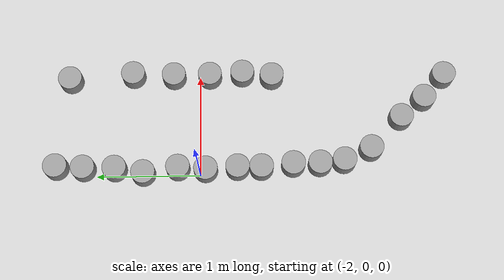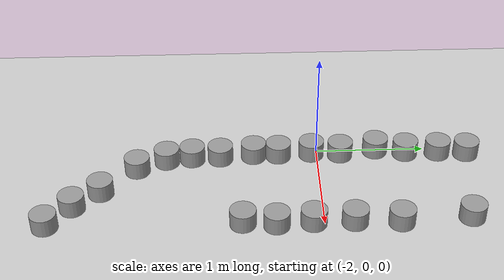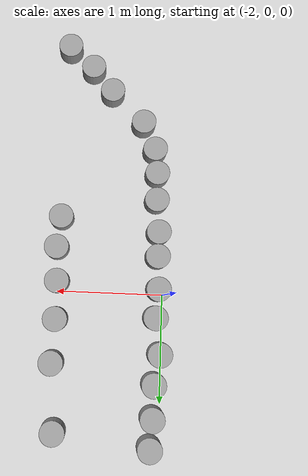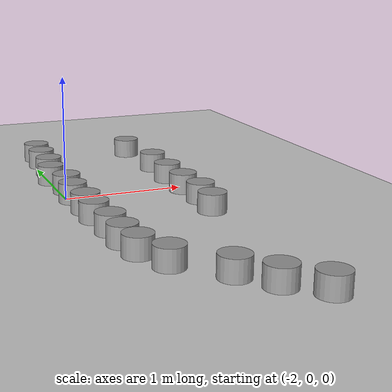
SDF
<sdf version="1.6">
 <world name="default">
  <model name="ground_plane">
   <static>1</static>
   <link name="link">
    <collision name="collision">
     <geometry><plane><normal>0 0 1</normal><size>100 100</size></plane></geometry>
     <surface>
      <contact><collide_bitmask>65535</collide_bitmask></contact>
      <friction><ode><mu>100</mu><mu2>50</mu2></ode></friction>
     </surface>
    </collision>
    <visual name="visual">
     <cast_shadows>0</cast_shadows>
     <geometry><plane><normal>0 0 1</normal><size>100 100</size></plane></geometry>
     <material>
      <script><uri>file://media/materials/scripts/gazebo.material</uri><name>Gazebo/Grey</name></script>
     </material>
    </visual>
   </link>
  </model>
  <model name="pillar_clone_4">
   <link name="link_0">
    <inertial>
     <mass>0.0172437</mass>
     <inertia>
      <ixx>0.000207925</ixx>
      <ixy>0</ixy>
      <ixz>0</ixz>
      <iyy>0.000207925</iyy>
      <iyz>0</iyz>
      <izz>0.000114861</izz>
     </inertia>
    </inertial>
    <pose>2e-06 -0 0 0 -0 0</pose>
    <visual name="visual">
     <geometry><cylinder><radius>0.115422</radius><length>0.32362</length></cylinder></geometry>
     <material>
      <lighting>1</lighting>
      <script><uri>file://media/materials/scripts/gazebo.material</uri><name>Gazebo/Grey</name></script>
      <shader type="vertex"><normal_map>__default__</normal_map></shader>
     </material>
    </visual>
    <collision name="collision">
     <geometry><cylinder><radius>0.115422</radius><length>0.32362</length></cylinder></geometry>
     <surface>
      <friction>
       <ode><mu>1</mu><mu2>1</mu2><fdir1>0 0 0</fdir1><slip1>0</slip1><slip2>0</slip2></ode>
       <torsional>
        <coefficient>1</coefficient>
        <patch_radius>0</patch_radius>
        <surface_radius>0</surface_radius>
        <use_patch_radius>1</use_patch_radius>
        <ode><slip>0</slip></ode>
       </torsional>
      </friction>
      <bounce><restitution_coefficient>0</restitution_coefficient><threshold>1e+06</threshold></bounce>
      <contact>
       <collide_without_contact>0</collide_without_contact>
       <collide_without_contact_bitmask>1</collide_without_contact_bitmask>
       <collide_bitmask>1</collide_bitmask>
       <ode>
        <soft_cfm>0</soft_cfm>
        <soft_erp>0.2</soft_erp>
        <kp>1e+13</kp>
        <kd>1</kd>
        <max_vel>0.01</max_vel>
        <min_depth>0</min_depth>
       </ode>
       <bullet>
        <split_impulse>1</split_impulse>
        <split_impulse_penetration_threshold>-0.01</split_impulse_penetration_threshold>
        <soft_cfm>0</soft_cfm>
        <soft_erp>0.2</soft_erp>
        <kp>1e+13</kp>
        <kd>1</kd>
       </bullet>
      </contact>
     </surface>
    </collision>
   </link>
   <static>1</static>
   <pose>-1.91045 1.38722 0 0 -0 0</pose>
  </model>
  <model name="pillar_clone_5">
   <link name="link_0">
    <inertial>
     <mass>0.0172437</mass>
     <inertia>
      <ixx>0.000207925</ixx>
      <ixy>0</ixy>
      <ixz>0</ixz>
      <iyy>0.000207925</iyy>
      <iyz>0</iyz>
      <izz>0.000114861</izz>
     </inertia>
    </inertial>
    <pose>2e-06 -0 0 0 -0 0</pose>
    <visual name="visual">
     <geometry><cylinder><radius>0.115422</radius><length>0.32362</length></cylinder></geometry>
     <material>
      <lighting>1</lighting>
      <script><uri>file://media/materials/scripts/gazebo.material</uri><name>Gazebo/Grey</name></script>
      <shader type="vertex"><normal_map>__default__</normal_map></shader>
     </material>
    </visual>
    <collision name="collision">
     <geometry><cylinder><radius>0.115422</radius><length>0.32362</length></cylinder></geometry>
     <surface>
      <friction>
       <ode><mu>1</mu><mu2>1</mu2><fdir1>0 0 0</fdir1><slip1>0</slip1><slip2>0</slip2></ode>
       <torsional>
        <coefficient>1</coefficient>
        <patch_radius>0</patch_radius>
        <surface_radius>0</surface_radius>
        <use_patch_radius>1</use_patch_radius>
        <ode><slip>0</slip></ode>
       </torsional>
      </friction>
      <bounce><restitution_coefficient>0</restitution_coefficient><threshold>1e+06</threshold></bounce>
      <contact>
       <collide_without_contact>0</collide_without_contact>
       <collide_without_contact_bitmask>1</collide_without_contact_bitmask>
       <collide_bitmask>1</collide_bitmask>
       <ode>
        <soft_cfm>0</soft_cfm>
        <soft_erp>0.2</soft_erp>
        <kp>1e+13</kp>
        <kd>1</kd>
        <max_vel>0.01</max_vel>
        <min_depth>0</min_depth>
       </ode>
       <bullet>
        <split_impulse>1</split_impulse>
        <split_impulse_penetration_threshold>-0.01</split_impulse_penetration_threshold>
        <soft_cfm>0</soft_cfm>
        <soft_erp>0.2</soft_erp>
        <kp>1e+13</kp>
        <kd>1</kd>
       </bullet>
      </contact>
     </surface>
    </collision>
   </link>
   <static>1</static>
   <pose>-1.92724 1.12302 0 0 -0 0</pose>
  </model>
  <model name="pillar_clone_6">
   <link name="link_0">
    <inertial>
     <mass>0.0172437</mass>
     <inertia>
      <ixx>0.000207925</ixx>
      <ixy>0</ixy>
      <ixz>0</ixz>
      <iyy>0.000207925</iyy>
      <iyz>0</iyz>
      <izz>0.000114861</izz>
     </inertia>
    </inertial>
    <pose>2e-06 -0 0 0 -0 0</pose>
    <visual name="visual">
     <geometry><cylinder><radius>0.115422</radius><length>0.32362</length></cylinder></geometry>
     <material>
      <lighting>1</lighting>
      <script><uri>file://media/materials/scripts/gazebo.material</uri><name>Gazebo/Grey</name></script>
      <shader type="vertex"><normal_map>__default__</normal_map></shader>
     </material>
    </visual>
    <collision name="collision">
     <geometry><cylinder><radius>0.115422</radius><length>0.32362</length></cylinder></geometry>
     <surface>
      <friction>
       <ode><mu>1</mu><mu2>1</mu2><fdir1>0 0 0</fdir1><slip1>0</slip1><slip2>0</slip2></ode>
       <torsional>
        <coefficient>1</coefficient>
        <patch_radius>0</patch_radius>
        <surface_radius>0</surface_radius>
        <use_patch_radius>1</use_patch_radius>
        <ode><slip>0</slip></ode>
       </torsional>
      </friction>
      <bounce><restitution_coefficient>0</restitution_coefficient><threshold>1e+06</threshold></bounce>
      <contact>
       <collide_without_contact>0</collide_without_contact>
       <collide_without_contact_bitmask>1</collide_without_contact_bitmask>
       <collide_bitmask>1</collide_bitmask>
       <ode>
        <soft_cfm>0</soft_cfm>
        <soft_erp>0.2</soft_erp>
        <kp>1e+13</kp>
        <kd>1</kd>
        <max_vel>0.01</max_vel>
        <min_depth>0</min_depth>
       </ode>
       <bullet>
        <split_impulse>1</split_impulse>
        <split_impulse_penetration_threshold>-0.01</split_impulse_penetration_threshold>
        <soft_cfm>0</soft_cfm>
        <soft_erp>0.2</soft_erp>
        <kp>1e+13</kp>
        <kd>1</kd>
       </bullet>
      </contact>
     </surface>
    </collision>
   </link>
   <static>1</static>
   <pose>-1.93349 0.821144 0 0 -0 0</pose>
  </model>
  <model name="pillar_clone_7">
   <link name="link_0">
    <inertial>
     <mass>0.0172437</mass>
     <inertia>
      <ixx>0.000207925</ixx>
      <ixy>0</ixy>
      <ixz>0</ixz>
      <iyy>0.000207925</iyy>
      <iyz>0</iyz>
      <izz>0.000114861</izz>
     </inertia>
    </inertial>
    <pose>2e-06 -0 0 0 -0 0</pose>
    <visual name="visual">
     <geometry><cylinder><radius>0.115422</radius><length>0.32362</length></cylinder></geometry>
     <material>
      <lighting>1</lighting>
      <script><uri>file://media/materials/scripts/gazebo.material</uri><name>Gazebo/Grey</name></script>
      <shader type="vertex"><normal_map>__default__</normal_map></shader>
     </material>
    </visual>
    <collision name="collision">
     <geometry><cylinder><radius>0.115422</radius><length>0.32362</length></cylinder></geometry>
     <surface>
      <friction>
       <ode><mu>1</mu><mu2>1</mu2><fdir1>0 0 0</fdir1><slip1>0</slip1><slip2>0</slip2></ode>
       <torsional>
        <coefficient>1</coefficient>
        <patch_radius>0</patch_radius>
        <surface_radius>0</surface_radius>
        <use_patch_radius>1</use_patch_radius>
        <ode><slip>0</slip></ode>
       </torsional>
      </friction>
      <bounce><restitution_coefficient>0</restitution_coefficient><threshold>1e+06</threshold></bounce>
      <contact>
       <collide_without_contact>0</collide_without_contact>
       <collide_without_contact_bitmask>1</collide_without_contact_bitmask>
       <collide_bitmask>1</collide_bitmask>
       <ode>
        <soft_cfm>0</soft_cfm>
        <soft_erp>0.2</soft_erp>
        <kp>1e+13</kp>
        <kd>1</kd>
        <max_vel>0.01</max_vel>
        <min_depth>0</min_depth>
       </ode>
       <bullet>
        <split_impulse>1</split_impulse>
        <split_impulse_penetration_threshold>-0.01</split_impulse_penetration_threshold>
        <soft_cfm>0</soft_cfm>
        <soft_erp>0.2</soft_erp>
        <kp>1e+13</kp>
        <kd>1</kd>
       </bullet>
      </contact>
     </surface>
    </collision>
   </link>
   <static>1</static>
   <pose>-1.98154 0.546224 0 0 -0 0</pose>
  </model>
  <model name="pillar_clone_8">
   <link name="link_0">
    <inertial>
     <mass>0.0172437</mass>
     <inertia>
      <ixx>0.000207925</ixx>
      <ixy>0</ixy>
      <ixz>0</ixz>
      <iyy>0.000207925</iyy>
      <iyz>0</iyz>
      <izz>0.000114861</izz>
     </inertia>
    </inertial>
    <pose>2e-06 -0 0 0 -0 0</pose>
    <visual name="visual">
     <geometry><cylinder><radius>0.115422</radius><length>0.32362</length></cylinder></geometry>
     <material>
      <lighting>1</lighting>
      <script><uri>file://media/materials/scripts/gazebo.material</uri><name>Gazebo/Grey</name></script>
      <shader type="vertex"><normal_map>__default__</normal_map></shader>
     </material>
    </visual>
    <collision name="collision">
     <geometry><cylinder><radius>0.115422</radius><length>0.32362</length></cylinder></geometry>
     <surface>
      <friction>
       <ode><mu>1</mu><mu2>1</mu2><fdir1>0 0 0</fdir1><slip1>0</slip1><slip2>0</slip2></ode>
       <torsional>
        <coefficient>1</coefficient>
        <patch_radius>0</patch_radius>
        <surface_radius>0</surface_radius>
        <use_patch_radius>1</use_patch_radius>
        <ode><slip>0</slip></ode>
       </torsional>
      </friction>
      <bounce><restitution_coefficient>0</restitution_coefficient><threshold>1e+06</threshold></bounce>
      <contact>
       <collide_without_contact>0</collide_without_contact>
       <collide_without_contact_bitmask>1</collide_without_contact_bitmask>
       <collide_bitmask>1</collide_bitmask>
       <ode>
        <soft_cfm>0</soft_cfm>
        <soft_erp>0.2</soft_erp>
        <kp>1e+13</kp>
        <kd>1</kd>
        <max_vel>0.01</max_vel>
        <min_depth>0</min_depth>
       </ode>
       <bullet>
        <split_impulse>1</split_impulse>
        <split_impulse_penetration_threshold>-0.01</split_impulse_penetration_threshold>
        <soft_cfm>0</soft_cfm>
        <soft_erp>0.2</soft_erp>
        <kp>1e+13</kp>
        <kd>1</kd>
       </bullet>
      </contact>
     </surface>
    </collision>
   </link>
   <static>1</static>
   <pose>-1.93324 0.214347 0 0 -0 0</pose>
  </model>
  <model name="pillar_clone_9">
   <link name="link_0">
    <inertial>
     <mass>0.0172437</mass>
     <inertia>
      <ixx>0.000207925</ixx>
      <ixy>0</ixy>
      <ixz>0</ixz>
      <iyy>0.000207925</iyy>
      <iyz>0</iyz>
      <izz>0.000114861</izz>
     </inertia>
    </inertial>
    <pose>2e-06 -0 0 0 -0 0</pose>
    <visual name="visual">
     <geometry><cylinder><radius>0.115422</radius><length>0.32362</length></cylinder></geometry>
     <material>
      <lighting>1</lighting>
      <script><uri>file://media/materials/scripts/gazebo.material</uri><name>Gazebo/Grey</name></script>
      <shader type="vertex"><normal_map>__default__</normal_map></shader>
     </material>
    </visual>
    <collision name="collision">
     <geometry><cylinder><radius>0.115422</radius><length>0.32362</length></cylinder></geometry>
     <surface>
      <friction>
       <ode><mu>1</mu><mu2>1</mu2><fdir1>0 0 0</fdir1><slip1>0</slip1><slip2>0</slip2></ode>
       <torsional>
        <coefficient>1</coefficient>
        <patch_radius>0</patch_radius>
        <surface_radius>0</surface_radius>
        <use_patch_radius>1</use_patch_radius>
        <ode><slip>0</slip></ode>
       </torsional>
      </friction>
      <bounce><restitution_coefficient>0</restitution_coefficient><threshold>1e+06</threshold></bounce>
      <contact>
       <collide_without_contact>0</collide_without_contact>
       <collide_without_contact_bitmask>1</collide_without_contact_bitmask>
       <collide_bitmask>1</collide_bitmask>
       <ode>
        <soft_cfm>0</soft_cfm>
        <soft_erp>0.2</soft_erp>
        <kp>1e+13</kp>
        <kd>1</kd>
        <max_vel>0.01</max_vel>
        <min_depth>0</min_depth>
       </ode>
       <bullet>
        <split_impulse>1</split_impulse>
        <split_impulse_penetration_threshold>-0.01</split_impulse_penetration_threshold>
        <soft_cfm>0</soft_cfm>
        <soft_erp>0.2</soft_erp>
        <kp>1e+13</kp>
        <kd>1</kd>
       </bullet>
      </contact>
     </surface>
    </collision>
   </link>
   <static>1</static>
   <pose>-1.9547 -0.052114 0 0 -0 0</pose>
  </model>
  <model name="pillar_clone_10">
   <link name="link_0">
    <inertial>
     <mass>0.0172437</mass>
     <inertia>
      <ixx>0.000207925</ixx>
      <ixy>0</ixy>
      <ixz>0</ixz>
      <iyy>0.000207925</iyy>
      <iyz>0</iyz>
      <izz>0.000114861</izz>
     </inertia>
    </inertial>
    <pose>2e-06 -0 0 0 -0 0</pose>
    <visual name="visual">
     <geometry><cylinder><radius>0.115422</radius><length>0.32362</length></cylinder></geometry>
     <material>
      <lighting>1</lighting>
      <script><uri>file://media/materials/scripts/gazebo.material</uri><name>Gazebo/Grey</name></script>
      <shader type="vertex"><normal_map>__default__</normal_map></shader>
     </material>
    </visual>
    <collision name="collision">
     <geometry><cylinder><radius>0.115422</radius><length>0.32362</length></cylinder></geometry>
     <surface>
      <friction>
       <ode><mu>1</mu><mu2>1</mu2><fdir1>0 0 0</fdir1><slip1>0</slip1><slip2>0</slip2></ode>
       <torsional>
        <coefficient>1</coefficient>
        <patch_radius>0</patch_radius>
        <surface_radius>0</surface_radius>
        <use_patch_radius>1</use_patch_radius>
        <ode><slip>0</slip></ode>
       </torsional>
      </friction>
      <bounce><restitution_coefficient>0</restitution_coefficient><threshold>1e+06</threshold></bounce>
      <contact>
       <collide_without_contact>0</collide_without_contact>
       <collide_without_contact_bitmask>1</collide_without_contact_bitmask>
       <collide_bitmask>1</collide_bitmask>
       <ode>
        <soft_cfm>0</soft_cfm>
        <soft_erp>0.2</soft_erp>
        <kp>1e+13</kp>
        <kd>1</kd>
        <max_vel>0.01</max_vel>
        <min_depth>0</min_depth>
       </ode>
       <bullet>
        <split_impulse>1</split_impulse>
        <split_impulse_penetration_threshold>-0.01</split_impulse_penetration_threshold>
        <soft_cfm>0</soft_cfm>
        <soft_erp>0.2</soft_erp>
        <kp>1e+13</kp>
        <kd>1</kd>
       </bullet>
      </contact>
     </surface>
    </collision>
   </link>
   <static>1</static>
   <pose>-1.93858 -0.358246 0 0 -0 0</pose>
  </model>
  <model name="pillar_clone_11">
   <link name="link_0">
    <inertial>
     <mass>0.0172437</mass>
     <inertia>
      <ixx>0.000207925</ixx>
      <ixy>0</ixy>
      <ixz>0</ixz>
      <iyy>0.000207925</iyy>
      <iyz>0</iyz>
      <izz>0.000114861</izz>
     </inertia>
    </inertial>
    <pose>2e-06 -0 0 0 -0 0</pose>
    <visual name="visual">
     <geometry><cylinder><radius>0.115422</radius><length>0.32362</length></cylinder></geometry>
     <material>
      <lighting>1</lighting>
      <script><uri>file://media/materials/scripts/gazebo.material</uri><name>Gazebo/Grey</name></script>
      <shader type="vertex"><normal_map>__default__</normal_map></shader>
     </material>
    </visual>
    <collision name="collision">
     <geometry><cylinder><radius>0.115422</radius><length>0.32362</length></cylinder></geometry>
     <surface>
      <friction>
       <ode><mu>1</mu><mu2>1</mu2><fdir1>0 0 0</fdir1><slip1>0</slip1><slip2>0</slip2></ode>
       <torsional>
        <coefficient>1</coefficient>
        <patch_radius>0</patch_radius>
        <surface_radius>0</surface_radius>
        <use_patch_radius>1</use_patch_radius>
        <ode><slip>0</slip></ode>
       </torsional>
      </friction>
      <bounce><restitution_coefficient>0</restitution_coefficient><threshold>1e+06</threshold></bounce>
      <contact>
       <collide_without_contact>0</collide_without_contact>
       <collide_without_contact_bitmask>1</collide_without_contact_bitmask>
       <collide_bitmask>1</collide_bitmask>
       <ode>
        <soft_cfm>0</soft_cfm>
        <soft_erp>0.2</soft_erp>
        <kp>1e+13</kp>
        <kd>1</kd>
        <max_vel>0.01</max_vel>
        <min_depth>0</min_depth>
       </ode>
       <bullet>
        <split_impulse>1</split_impulse>
        <split_impulse_penetration_threshold>-0.01</split_impulse_penetration_threshold>
        <soft_cfm>0</soft_cfm>
        <soft_erp>0.2</soft_erp>
        <kp>1e+13</kp>
        <kd>1</kd>
       </bullet>
      </contact>
     </surface>
    </collision>
   </link>
   <static>1</static>
   <pose>-1.94131 -0.588095 0 0 -0 0</pose>
  </model>
  <model name="pillar_clone_12">
   <link name="link_0">
    <inertial>
     <mass>0.0172437</mass>
     <inertia>
      <ixx>0.000207925</ixx>
      <ixy>0</ixy>
      <ixz>0</ixz>
      <iyy>0.000207925</iyy>
      <iyz>0</iyz>
      <izz>0.000114861</izz>
     </inertia>
    </inertial>
    <pose>2e-06 -0 0 0 -0 0</pose>
    <visual name="visual">
     <geometry><cylinder><radius>0.115422</radius><length>0.32362</length></cylinder></geometry>
     <material>
      <lighting>1</lighting>
      <script><uri>file://media/materials/scripts/gazebo.material</uri><name>Gazebo/Grey</name></script>
      <shader type="vertex"><normal_map>__default__</normal_map></shader>
     </material>
    </visual>
    <collision name="collision">
     <geometry><cylinder><radius>0.115422</radius><length>0.32362</length></cylinder></geometry>
     <surface>
      <friction>
       <ode><mu>1</mu><mu2>1</mu2><fdir1>0 0 0</fdir1><slip1>0</slip1><slip2>0</slip2></ode>
       <torsional>
        <coefficient>1</coefficient>
        <patch_radius>0</patch_radius>
        <surface_radius>0</surface_radius>
        <use_patch_radius>1</use_patch_radius>
        <ode><slip>0</slip></ode>
       </torsional>
      </friction>
      <bounce><restitution_coefficient>0</restitution_coefficient><threshold>1e+06</threshold></bounce>
      <contact>
       <collide_without_contact>0</collide_without_contact>
       <collide_without_contact_bitmask>1</collide_without_contact_bitmask>
       <collide_bitmask>1</collide_bitmask>
       <ode>
        <soft_cfm>0</soft_cfm>
        <soft_erp>0.2</soft_erp>
        <kp>1e+13</kp>
        <kd>1</kd>
        <max_vel>0.01</max_vel>
        <min_depth>0</min_depth>
       </ode>
       <bullet>
        <split_impulse>1</split_impulse>
        <split_impulse_penetration_threshold>-0.01</split_impulse_penetration_threshold>
        <soft_cfm>0</soft_cfm>
        <soft_erp>0.2</soft_erp>
        <kp>1e+13</kp>
        <kd>1</kd>
       </bullet>
      </contact>
     </surface>
    </collision>
   </link>
   <static>1</static>
   <pose>-1.91538 -0.894045 0 0 -0 0</pose>
  </model>
  <model name="pillar_clone_42">
   <link name="link_0">
    <inertial>
     <mass>0.0172437</mass>
     <inertia>
      <ixx>0.000207925</ixx>
      <ixy>0</ixy>
      <ixz>0</ixz>
      <iyy>0.000207925</iyy>
      <iyz>0</iyz>
      <izz>0.000114861</izz>
     </inertia>
    </inertial>
    <pose>2e-06 -0 0 0 -0 0</pose>
    <visual name="visual">
     <geometry><cylinder><radius>0.115422</radius><length>0.32362</length></cylinder></geometry>
     <material>
      <lighting>1</lighting>
      <script><uri>file://media/materials/scripts/gazebo.material</uri><name>Gazebo/Grey</name></script>
      <shader type="vertex"><normal_map>__default__</normal_map></shader>
     </material>
    </visual>
    <collision name="collision">
     <geometry><cylinder><radius>0.115422</radius><length>0.32362</length></cylinder></geometry>
     <surface>
      <friction>
       <ode><mu>1</mu><mu2>1</mu2><fdir1>0 0 0</fdir1><slip1>0</slip1><slip2>0</slip2></ode>
       <torsional>
        <coefficient>1</coefficient>
        <patch_radius>0</patch_radius>
        <surface_radius>0</surface_radius>
        <use_patch_radius>1</use_patch_radius>
        <ode><slip>0</slip></ode>
       </torsional>
      </friction>
      <bounce><restitution_coefficient>0</restitution_coefficient><threshold>1e+06</threshold></bounce>
      <contact>
       <collide_without_contact>0</collide_without_contact>
       <collide_without_contact_bitmask>1</collide_without_contact_bitmask>
       <collide_bitmask>1</collide_bitmask>
       <ode>
        <soft_cfm>0</soft_cfm>
        <soft_erp>0.2</soft_erp>
        <kp>1e+13</kp>
        <kd>1</kd>
        <max_vel>0.01</max_vel>
        <min_depth>0</min_depth>
       </ode>
       <bullet>
        <split_impulse>1</split_impulse>
        <split_impulse_penetration_threshold>-0.01</split_impulse_penetration_threshold>
        <soft_cfm>0</soft_cfm>
        <soft_erp>0.2</soft_erp>
        <kp>1e+13</kp>
        <kd>1</kd>
       </bullet>
      </contact>
     </surface>
    </collision>
   </link>
   <static>1</static>
   <pose>-1.03434 -2.39164 0 0 -0 0</pose>
  </model>
  <model name="pillar_clone_43">
   <link name="link_0">
    <inertial>
     <mass>0.0172437</mass>
     <inertia>
      <ixx>0.000207925</ixx>
      <ixy>0</ixy>
      <ixz>0</ixz>
      <iyy>0.000207925</iyy>
      <iyz>0</iyz>
      <izz>0.000114861</izz>
     </inertia>
    </inertial>
    <pose>2e-06 -0 0 0 -0 0</pose>
    <visual name="visual">
     <geometry><cylinder><radius>0.115422</radius><length>0.32362</length></cylinder></geometry>
     <material>
      <lighting>1</lighting>
      <script><uri>file://media/materials/scripts/gazebo.material</uri><name>Gazebo/Grey</name></script>
      <shader type="vertex"><normal_map>__default__</normal_map></shader>
     </material>
    </visual>
    <collision name="collision">
     <geometry><cylinder><radius>0.115422</radius><length>0.32362</length></cylinder></geometry>
     <surface>
      <friction>
       <ode><mu>1</mu><mu2>1</mu2><fdir1>0 0 0</fdir1><slip1>0</slip1><slip2>0</slip2></ode>
       <torsional>
        <coefficient>1</coefficient>
        <patch_radius>0</patch_radius>
        <surface_radius>0</surface_radius>
        <use_patch_radius>1</use_patch_radius>
        <ode><slip>0</slip></ode>
       </torsional>
      </friction>
      <bounce><restitution_coefficient>0</restitution_coefficient><threshold>1e+06</threshold></bounce>
      <contact>
       <collide_without_contact>0</collide_without_contact>
       <collide_without_contact_bitmask>1</collide_without_contact_bitmask>
       <collide_bitmask>1</collide_bitmask>
       <ode>
        <soft_cfm>0</soft_cfm>
        <soft_erp>0.2</soft_erp>
        <kp>1e+13</kp>
        <kd>1</kd>
        <max_vel>0.01</max_vel>
        <min_depth>0</min_depth>
       </ode>
       <bullet>
        <split_impulse>1</split_impulse>
        <split_impulse_penetration_threshold>-0.01</split_impulse_penetration_threshold>
        <soft_cfm>0</soft_cfm>
        <soft_erp>0.2</soft_erp>
        <kp>1e+13</kp>
        <kd>1</kd>
       </bullet>
      </contact>
     </surface>
    </collision>
   </link>
   <static>1</static>
   <pose>-1.26655 -2.18525 0 0 -0 0</pose>
  </model>
  <model name="pillar_clone_44">
   <link name="link_0">
    <inertial>
     <mass>0.0172437</mass>
     <inertia>
      <ixx>0.000207925</ixx>
      <ixy>0</ixy>
      <ixz>0</ixz>
      <iyy>0.000207925</iyy>
      <iyz>0</iyz>
      <izz>0.000114861</izz>
     </inertia>
    </inertial>
    <pose>2e-06 -0 0 0 -0 0</pose>
    <visual name="visual">
     <geometry><cylinder><radius>0.115422</radius><length>0.32362</length></cylinder></geometry>
     <material>
      <lighting>1</lighting>
      <script><uri>file://media/materials/scripts/gazebo.material</uri><name>Gazebo/Grey</name></script>
      <shader type="vertex"><normal_map>__default__</normal_map></shader>
     </material>
    </visual>
    <collision name="collision">
     <geometry><cylinder><radius>0.115422</radius><length>0.32362</length></cylinder></geometry>
     <surface>
      <friction>
       <ode><mu>1</mu><mu2>1</mu2><fdir1>0 0 0</fdir1><slip1>0</slip1><slip2>0</slip2></ode>
       <torsional>
        <coefficient>1</coefficient>
        <patch_radius>0</patch_radius>
        <surface_radius>0</surface_radius>
        <use_patch_radius>1</use_patch_radius>
        <ode><slip>0</slip></ode>
       </torsional>
      </friction>
      <bounce><restitution_coefficient>0</restitution_coefficient><threshold>1e+06</threshold></bounce>
      <contact>
       <collide_without_contact>0</collide_without_contact>
       <collide_without_contact_bitmask>1</collide_without_contact_bitmask>
       <collide_bitmask>1</collide_bitmask>
       <ode>
        <soft_cfm>0</soft_cfm>
        <soft_erp>0.2</soft_erp>
        <kp>1e+13</kp>
        <kd>1</kd>
        <max_vel>0.01</max_vel>
        <min_depth>0</min_depth>
       </ode>
       <bullet>
        <split_impulse>1</split_impulse>
        <split_impulse_penetration_threshold>-0.01</split_impulse_penetration_threshold>
        <soft_cfm>0</soft_cfm>
        <soft_erp>0.2</soft_erp>
        <kp>1e+13</kp>
        <kd>1</kd>
       </bullet>
      </contact>
     </surface>
    </collision>
   </link>
   <static>1</static>
   <pose>-1.4595 -1.95409 0 0 -0 0</pose>
  </model>
  <model name="pillar_clone_45">
   <link name="link_0">
    <inertial>
     <mass>0.0172437</mass>
     <inertia>
      <ixx>0.000207925</ixx>
      <ixy>0</ixy>
      <ixz>0</ixz>
      <iyy>0.000207925</iyy>
      <iyz>0</iyz>
      <izz>0.000114861</izz>
     </inertia>
    </inertial>
    <pose>2e-06 -0 0 0 -0 0</pose>
    <visual name="visual">
     <geometry><cylinder><radius>0.115422</radius><length>0.32362</length></cylinder></geometry>
     <material>
      <lighting>1</lighting>
      <script><uri>file://media/materials/scripts/gazebo.material</uri><name>Gazebo/Grey</name></script>
      <shader type="vertex"><normal_map>__default__</normal_map></shader>
     </material>
    </visual>
    <collision name="collision">
     <geometry><cylinder><radius>0.115422</radius><length>0.32362</length></cylinder></geometry>
     <surface>
      <friction>
       <ode><mu>1</mu><mu2>1</mu2><fdir1>0 0 0</fdir1><slip1>0</slip1><slip2>0</slip2></ode>
       <torsional>
        <coefficient>1</coefficient>
        <patch_radius>0</patch_radius>
        <surface_radius>0</surface_radius>
        <use_patch_radius>1</use_patch_radius>
        <ode><slip>0</slip></ode>
       </torsional>
      </friction>
      <bounce><restitution_coefficient>0</restitution_coefficient><threshold>1e+06</threshold></bounce>
      <contact>
       <collide_without_contact>0</collide_without_contact>
       <collide_without_contact_bitmask>1</collide_without_contact_bitmask>
       <collide_bitmask>1</collide_bitmask>
       <ode>
        <soft_cfm>0</soft_cfm>
        <soft_erp>0.2</soft_erp>
        <kp>1e+13</kp>
        <kd>1</kd>
        <max_vel>0.01</max_vel>
        <min_depth>0</min_depth>
       </ode>
       <bullet>
        <split_impulse>1</split_impulse>
        <split_impulse_penetration_threshold>-0.01</split_impulse_penetration_threshold>
        <soft_cfm>0</soft_cfm>
        <soft_erp>0.2</soft_erp>
        <kp>1e+13</kp>
        <kd>1</kd>
       </bullet>
      </contact>
     </surface>
    </collision>
   </link>
   <static>1</static>
   <pose>-1.76873 -1.65016 0 0 -0 0</pose>
  </model>
  <model name="pillar_clone_46">
   <link name="link_0">
    <inertial>
     <mass>0.0172437</mass>
     <inertia>
      <ixx>0.000207925</ixx>
      <ixy>0</ixy>
      <ixz>0</ixz>
      <iyy>0.000207925</iyy>
      <iyz>0</iyz>
      <izz>0.000114861</izz>
     </inertia>
    </inertial>
    <pose>2e-06 -0 0 0 -0 0</pose>
    <visual name="visual">
     <geometry><cylinder><radius>0.115422</radius><length>0.32362</length></cylinder></geometry>
     <material>
      <lighting>1</lighting>
      <script><uri>file://media/materials/scripts/gazebo.material</uri><name>Gazebo/Grey</name></script>
      <shader type="vertex"><normal_map>__default__</normal_map></shader>
     </material>
    </visual>
    <collision name="collision">
     <geometry><cylinder><radius>0.115422</radius><length>0.32362</length></cylinder></geometry>
     <surface>
      <friction>
       <ode><mu>1</mu><mu2>1</mu2><fdir1>0 0 0</fdir1><slip1>0</slip1><slip2>0</slip2></ode>
       <torsional>
        <coefficient>1</coefficient>
        <patch_radius>0</patch_radius>
        <surface_radius>0</surface_radius>
        <use_patch_radius>1</use_patch_radius>
        <ode><slip>0</slip></ode>
       </torsional>
      </friction>
      <bounce><restitution_coefficient>0</restitution_coefficient><threshold>1e+06</threshold></bounce>
      <contact>
       <collide_without_contact>0</collide_without_contact>
       <collide_without_contact_bitmask>1</collide_without_contact_bitmask>
       <collide_bitmask>1</collide_bitmask>
       <ode>
        <soft_cfm>0</soft_cfm>
        <soft_erp>0.2</soft_erp>
        <kp>1e+13</kp>
        <kd>1</kd>
        <max_vel>0.01</max_vel>
        <min_depth>0</min_depth>
       </ode>
       <bullet>
        <split_impulse>1</split_impulse>
        <split_impulse_penetration_threshold>-0.01</split_impulse_penetration_threshold>
        <soft_cfm>0</soft_cfm>
        <soft_erp>0.2</soft_erp>
        <kp>1e+13</kp>
        <kd>1</kd>
       </bullet>
      </contact>
     </surface>
    </collision>
   </link>
   <static>1</static>
   <pose>-1.88608 -1.38661 0 0 -0 0</pose>
  </model>
  <model name="pillar_clone_47">
   <link name="link_0">
    <inertial>
     <mass>0.0172437</mass>
     <inertia>
      <ixx>0.000207925</ixx>
      <ixy>0</ixy>
      <ixz>0</ixz>
      <iyy>0.000207925</iyy>
      <iyz>0</iyz>
      <izz>0.000114861</izz>
     </inertia>
    </inertial>
    <pose>2e-06 -0 0 0 -0 0</pose>
    <visual name="visual">
     <geometry><cylinder><radius>0.115422</radius><length>0.32362</length></cylinder></geometry>
     <material>
      <lighting>1</lighting>
      <script><uri>file://media/materials/scripts/gazebo.material</uri><name>Gazebo/Grey</name></script>
      <shader type="vertex"><normal_map>__default__</normal_map></shader>
     </material>
    </visual>
    <collision name="collision">
     <geometry><cylinder><radius>0.115422</radius><length>0.32362</length></cylinder></geometry>
     <surface>
      <friction>
       <ode><mu>1</mu><mu2>1</mu2><fdir1>0 0 0</fdir1><slip1>0</slip1><slip2>0</slip2></ode>
       <torsional>
        <coefficient>1</coefficient>
        <patch_radius>0</patch_radius>
        <surface_radius>0</surface_radius>
        <use_patch_radius>1</use_patch_radius>
        <ode><slip>0</slip></ode>
       </torsional>
      </friction>
      <bounce><restitution_coefficient>0</restitution_coefficient><threshold>1e+06</threshold></bounce>
      <contact>
       <collide_without_contact>0</collide_without_contact>
       <collide_without_contact_bitmask>1</collide_without_contact_bitmask>
       <collide_bitmask>1</collide_bitmask>
       <ode>
        <soft_cfm>0</soft_cfm>
        <soft_erp>0.2</soft_erp>
        <kp>1e+13</kp>
        <kd>1</kd>
        <max_vel>0.01</max_vel>
        <min_depth>0</min_depth>
       </ode>
       <bullet>
        <split_impulse>1</split_impulse>
        <split_impulse_penetration_threshold>-0.01</split_impulse_penetration_threshold>
        <soft_cfm>0</soft_cfm>
        <soft_erp>0.2</soft_erp>
        <kp>1e+13</kp>
        <kd>1</kd>
       </bullet>
      </contact>
     </surface>
    </collision>
   </link>
   <static>1</static>
   <pose>-1.91314 -1.15234 0 0 -0 0</pose>
  </model>
  <model name="pillar_clone_36_clone_60">
   <link name="link_0">
    <inertial>
     <mass>0.0172437</mass>
     <inertia>
      <ixx>0.000207925</ixx>
      <ixy>0</ixy>
      <ixz>0</ixz>
      <iyy>0.000207925</iyy>
      <iyz>0</iyz>
      <izz>0.000114861</izz>
     </inertia>
    </inertial>
    <pose>2e-06 -0 0 0 -0 0</pose>
    <visual name="visual">
     <geometry><cylinder><radius>0.115422</radius><length>0.32362</length></cylinder></geometry>
     <material>
      <lighting>1</lighting>
      <script><uri>file://media/materials/scripts/gazebo.material</uri><name>Gazebo/Grey</name></script>
      <shader type="vertex"><normal_map>__default__</normal_map></shader>
     </material>
    </visual>
    <collision name="collision">
     <geometry><cylinder><radius>0.115422</radius><length>0.32362</length></cylinder></geometry>
     <surface>
      <friction>
       <ode><mu>1</mu><mu2>1</mu2><fdir1>0 0 0</fdir1><slip1>0</slip1><slip2>0</slip2></ode>
       <torsional>
        <coefficient>1</coefficient>
        <patch_radius>0</patch_radius>
        <surface_radius>0</surface_radius>
        <use_patch_radius>1</use_patch_radius>
        <ode><slip>0</slip></ode>
       </torsional>
      </friction>
      <bounce><restitution_coefficient>0</restitution_coefficient><threshold>1e+06</threshold></bounce>
      <contact>
       <collide_without_contact>0</collide_without_contact>
       <collide_without_contact_bitmask>1</collide_without_contact_bitmask>
       <collide_bitmask>1</collide_bitmask>
       <ode>
        <soft_cfm>0</soft_cfm>
        <soft_erp>0.2</soft_erp>
        <kp>1e+13</kp>
        <kd>1</kd>
        <max_vel>0.01</max_vel>
        <min_depth>0</min_depth>
       </ode>
       <bullet>
        <split_impulse>1</split_impulse>
        <split_impulse_penetration_threshold>-0.01</split_impulse_penetration_threshold>
        <soft_cfm>0</soft_cfm>
        <soft_erp>0.2</soft_erp>
        <kp>1e+13</kp>
        <kd>1</kd>
       </bullet>
      </contact>
     </surface>
    </collision>
   </link>
   <static>1</static>
   <pose>-1.02973 1.27265 0 0 -0 0</pose>
  </model>
  <model name="pillar_clone_36_clone_62">
   <link name="link_0">
    <inertial>
     <mass>0.0172437</mass>
     <inertia>
      <ixx>0.000207925</ixx>
      <ixy>0</ixy>
      <ixz>0</ixz>
      <iyy>0.000207925</iyy>
      <iyz>0</iyz>
      <izz>0.000114861</izz>
     </inertia>
    </inertial>
    <pose>2e-06 -0 0 0 -0 0</pose>
    <visual name="visual">
     <geometry><cylinder><radius>0.115422</radius><length>0.32362</length></cylinder></geometry>
     <material>
      <lighting>1</lighting>
      <script><uri>file://media/materials/scripts/gazebo.material</uri><name>Gazebo/Grey</name></script>
      <shader type="vertex"><normal_map>__default__</normal_map></shader>
     </material>
    </visual>
    <collision name="collision">
     <geometry><cylinder><radius>0.115422</radius><length>0.32362</length></cylinder></geometry>
     <surface>
      <friction>
       <ode><mu>1</mu><mu2>1</mu2><fdir1>0 0 0</fdir1><slip1>0</slip1><slip2>0</slip2></ode>
       <torsional>
        <coefficient>1</coefficient>
        <patch_radius>0</patch_radius>
        <surface_radius>0</surface_radius>
        <use_patch_radius>1</use_patch_radius>
        <ode><slip>0</slip></ode>
       </torsional>
      </friction>
      <bounce><restitution_coefficient>0</restitution_coefficient><threshold>1e+06</threshold></bounce>
      <contact>
       <collide_without_contact>0</collide_without_contact>
       <collide_without_contact_bitmask>1</collide_without_contact_bitmask>
       <collide_bitmask>1</collide_bitmask>
       <ode>
        <soft_cfm>0</soft_cfm>
        <soft_erp>0.2</soft_erp>
        <kp>1e+13</kp>
        <kd>1</kd>
        <max_vel>0.01</max_vel>
        <min_depth>0</min_depth>
       </ode>
       <bullet>
        <split_impulse>1</split_impulse>
        <split_impulse_penetration_threshold>-0.01</split_impulse_penetration_threshold>
        <soft_cfm>0</soft_cfm>
        <soft_erp>0.2</soft_erp>
        <kp>1e+13</kp>
        <kd>1</kd>
       </bullet>
      </contact>
     </surface>
    </collision>
   </link>
   <static>1</static>
   <pose>-0.986062 0.656488 0 0 -0 0</pose>
  </model>
  <model name="pillar_clone_36_clone_63">
   <link name="link_0">
    <inertial>
     <mass>0.0172437</mass>
     <inertia>
      <ixx>0.000207925</ixx>
      <ixy>0</ixy>
      <ixz>0</ixz>
      <iyy>0.000207925</iyy>
      <iyz>0</iyz>
      <izz>0.000114861</izz>
     </inertia>
    </inertial>
    <pose>2e-06 -0 0 0 -0 0</pose>
    <visual name="visual">
     <geometry><cylinder><radius>0.115422</radius><length>0.32362</length></cylinder></geometry>
     <material>
      <lighting>1</lighting>
      <script><uri>file://media/materials/scripts/gazebo.material</uri><name>Gazebo/Grey</name></script>
      <shader type="vertex"><normal_map>__default__</normal_map></shader>
     </material>
    </visual>
    <collision name="collision">
     <geometry><cylinder><radius>0.115422</radius><length>0.32362</length></cylinder></geometry>
     <surface>
      <friction>
       <ode><mu>1</mu><mu2>1</mu2><fdir1>0 0 0</fdir1><slip1>0</slip1><slip2>0</slip2></ode>
       <torsional>
        <coefficient>1</coefficient>
        <patch_radius>0</patch_radius>
        <surface_radius>0</surface_radius>
        <use_patch_radius>1</use_patch_radius>
        <ode><slip>0</slip></ode>
       </torsional>
      </friction>
      <bounce><restitution_coefficient>0</restitution_coefficient><threshold>1e+06</threshold></bounce>
      <contact>
       <collide_without_contact>0</collide_without_contact>
       <collide_without_contact_bitmask>1</collide_without_contact_bitmask>
       <collide_bitmask>1</collide_bitmask>
       <ode>
        <soft_cfm>0</soft_cfm>
        <soft_erp>0.2</soft_erp>
        <kp>1e+13</kp>
        <kd>1</kd>
        <max_vel>0.01</max_vel>
        <min_depth>0</min_depth>
       </ode>
       <bullet>
        <split_impulse>1</split_impulse>
        <split_impulse_penetration_threshold>-0.01</split_impulse_penetration_threshold>
        <soft_cfm>0</soft_cfm>
        <soft_erp>0.2</soft_erp>
        <kp>1e+13</kp>
        <kd>1</kd>
       </bullet>
      </contact>
     </surface>
    </collision>
   </link>
   <static>1</static>
   <pose>-1.00405 0.25658 0 0 -0 0</pose>
  </model>
  <model name="pillar_clone_36_clone_64">
   <link name="link_0">
    <inertial>
     <mass>0.0172437</mass>
     <inertia>
      <ixx>0.000207925</ixx>
      <ixy>0</ixy>
      <ixz>0</ixz>
      <iyy>0.000207925</iyy>
      <iyz>0</iyz>
      <izz>0.000114861</izz>
     </inertia>
    </inertial>
    <pose>2e-06 -0 0 0 -0 0</pose>
    <visual name="visual">
     <geometry><cylinder><radius>0.115422</radius><length>0.32362</length></cylinder></geometry>
     <material>
      <lighting>1</lighting>
      <script><uri>file://media/materials/scripts/gazebo.material</uri><name>Gazebo/Grey</name></script>
      <shader type="vertex"><normal_map>__default__</normal_map></shader>
     </material>
    </visual>
    <collision name="collision">
     <geometry><cylinder><radius>0.115422</radius><length>0.32362</length></cylinder></geometry>
     <surface>
      <friction>
       <ode><mu>1</mu><mu2>1</mu2><fdir1>0 0 0</fdir1><slip1>0</slip1><slip2>0</slip2></ode>
       <torsional>
        <coefficient>1</coefficient>
        <patch_radius>0</patch_radius>
        <surface_radius>0</surface_radius>
        <use_patch_radius>1</use_patch_radius>
        <ode><slip>0</slip></ode>
       </torsional>
      </friction>
      <bounce><restitution_coefficient>0</restitution_coefficient><threshold>1e+06</threshold></bounce>
      <contact>
       <collide_without_contact>0</collide_without_contact>
       <collide_without_contact_bitmask>1</collide_without_contact_bitmask>
       <collide_bitmask>1</collide_bitmask>
       <ode>
        <soft_cfm>0</soft_cfm>
        <soft_erp>0.2</soft_erp>
        <kp>1e+13</kp>
        <kd>1</kd>
        <max_vel>0.01</max_vel>
        <min_depth>0</min_depth>
       </ode>
       <bullet>
        <split_impulse>1</split_impulse>
        <split_impulse_penetration_threshold>-0.01</split_impulse_penetration_threshold>
        <soft_cfm>0</soft_cfm>
        <soft_erp>0.2</soft_erp>
        <kp>1e+13</kp>
        <kd>1</kd>
       </bullet>
      </contact>
     </surface>
    </collision>
   </link>
   <static>1</static>
   <pose>-1.00488 -0.096721 0 0 -0 0</pose>
  </model>
  <model name="pillar_clone_36_clone_65">
   <link name="link_0">
    <inertial>
     <mass>0.0172437</mass>
     <inertia>
      <ixx>0.000207925</ixx>
      <ixy>0</ixy>
      <ixz>0</ixz>
      <iyy>0.000207925</iyy>
      <iyz>0</iyz>
      <izz>0.000114861</izz>
     </inertia>
    </inertial>
    <pose>2e-06 -0 0 0 -0 0</pose>
    <visual name="visual">
     <geometry><cylinder><radius>0.115422</radius><length>0.32362</length></cylinder></geometry>
     <material>
      <lighting>1</lighting>
      <script><uri>file://media/materials/scripts/gazebo.material</uri><name>Gazebo/Grey</name></script>
      <shader type="vertex"><normal_map>__default__</normal_map></shader>
     </material>
    </visual>
    <collision name="collision">
     <geometry><cylinder><radius>0.115422</radius><length>0.32362</length></cylinder></geometry>
     <surface>
      <friction>
       <ode><mu>1</mu><mu2>1</mu2><fdir1>0 0 0</fdir1><slip1>0</slip1><slip2>0</slip2></ode>
       <torsional>
        <coefficient>1</coefficient>
        <patch_radius>0</patch_radius>
        <surface_radius>0</surface_radius>
        <use_patch_radius>1</use_patch_radius>
        <ode><slip>0</slip></ode>
       </torsional>
      </friction>
      <bounce><restitution_coefficient>0</restitution_coefficient><threshold>1e+06</threshold></bounce>
      <contact>
       <collide_without_contact>0</collide_without_contact>
       <collide_without_contact_bitmask>1</collide_without_contact_bitmask>
       <collide_bitmask>1</collide_bitmask>
       <ode>
        <soft_cfm>0</soft_cfm>
        <soft_erp>0.2</soft_erp>
        <kp>1e+13</kp>
        <kd>1</kd>
        <max_vel>0.01</max_vel>
        <min_depth>0</min_depth>
       </ode>
       <bullet>
        <split_impulse>1</split_impulse>
        <split_impulse_penetration_threshold>-0.01</split_impulse_penetration_threshold>
        <soft_cfm>0</soft_cfm>
        <soft_erp>0.2</soft_erp>
        <kp>1e+13</kp>
        <kd>1</kd>
       </bullet>
      </contact>
     </surface>
    </collision>
   </link>
   <static>1</static>
   <pose>-0.987332 -0.414884 0 0 -0 0</pose>
  </model>
  <model name="pillar_clone_36_clone_66">
   <link name="link_0">
    <inertial>
     <mass>0.0172437</mass>
     <inertia>
      <ixx>0.000207925</ixx>
      <ixy>0</ixy>
      <ixz>0</ixz>
      <iyy>0.000207925</iyy>
      <iyz>0</iyz>
      <izz>0.000114861</izz>
     </inertia>
    </inertial>
    <pose>2e-06 -0 0 0 -0 0</pose>
    <visual name="visual">
     <geometry><cylinder><radius>0.115422</radius><length>0.32362</length></cylinder></geometry>
     <material>
      <lighting>1</lighting>
      <script><uri>file://media/materials/scripts/gazebo.material</uri><name>Gazebo/Grey</name></script>
      <shader type="vertex"><normal_map>__default__</normal_map></shader>
     </material>
    </visual>
    <collision name="collision">
     <geometry><cylinder><radius>0.115422</radius><length>0.32362</length></cylinder></geometry>
     <surface>
      <friction>
       <ode><mu>1</mu><mu2>1</mu2><fdir1>0 0 0</fdir1><slip1>0</slip1><slip2>0</slip2></ode>
       <torsional>
        <coefficient>1</coefficient>
        <patch_radius>0</patch_radius>
        <surface_radius>0</surface_radius>
        <use_patch_radius>1</use_patch_radius>
        <ode><slip>0</slip></ode>
       </torsional>
      </friction>
      <bounce><restitution_coefficient>0</restitution_coefficient><threshold>1e+06</threshold></bounce>
      <contact>
       <collide_without_contact>0</collide_without_contact>
       <collide_without_contact_bitmask>1</collide_without_contact_bitmask>
       <collide_bitmask>1</collide_bitmask>
       <ode>
        <soft_cfm>0</soft_cfm>
        <soft_erp>0.2</soft_erp>
        <kp>1e+13</kp>
        <kd>1</kd>
        <max_vel>0.01</max_vel>
        <min_depth>0</min_depth>
       </ode>
       <bullet>
        <split_impulse>1</split_impulse>
        <split_impulse_penetration_threshold>-0.01</split_impulse_penetration_threshold>
        <soft_cfm>0</soft_cfm>
        <soft_erp>0.2</soft_erp>
        <kp>1e+13</kp>
        <kd>1</kd>
       </bullet>
      </contact>
     </surface>
    </collision>
   </link>
   <static>1</static>
   <pose>-1.0191 -0.703291 0 0 -0 0</pose>
  </model>
 </world>
</sdf>
